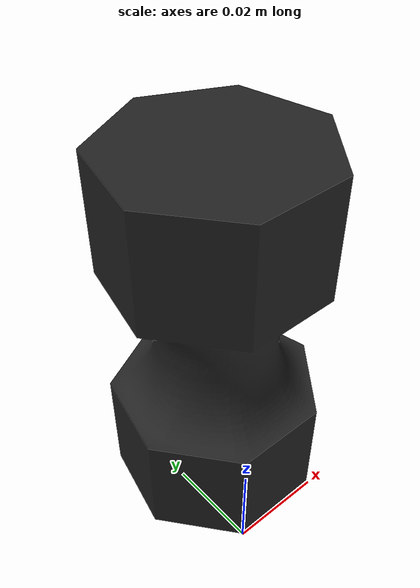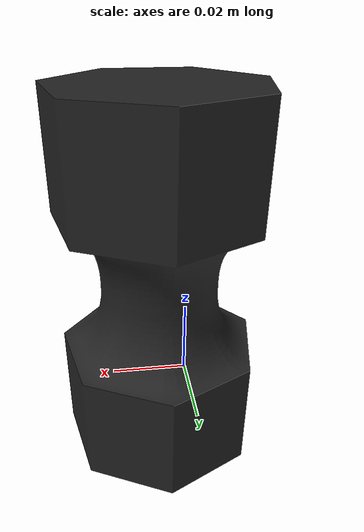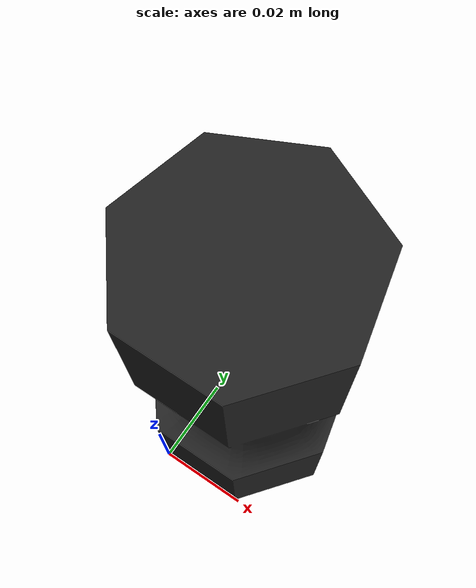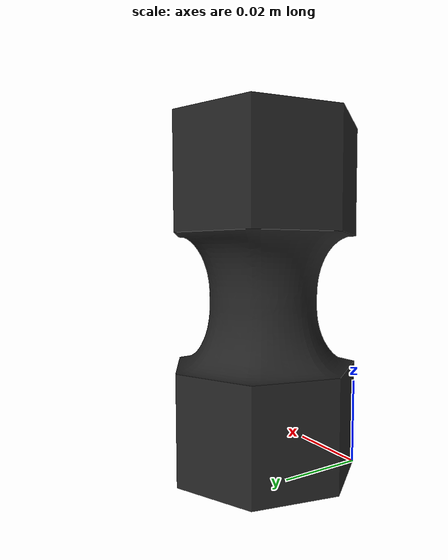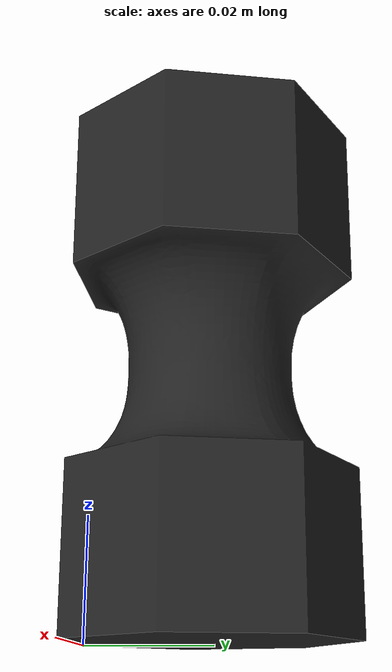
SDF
<?xml version="1.0"?>
<sdf version="1.6">
  <model name="object">
      <static>false</static>
      <link name="body">
        <pose>0 0 0 0 0 0</pose>

        <inertial>
          <mass>0.05</mass>
          <pose>0.01 0.021 0.04 0 0 0</pose>
          <inertia>
            <ixx>0.0003</ixx>
            <iyy>0.0002</iyy>
            <izz>0.0002</izz>
          </inertia>
      </inertial>

        <visual name="vis">
          <geometry>
            <mesh>
         	<uri>model://object/robot_object.dae</uri>
          </mesh>
          </geometry>
        </visual>

        <collision name="col">
          <geometry>
            <mesh>
             <uri>model://object/robot_object.dae</uri>
            </mesh>
          </geometry>
        </collision>
      </link>
  </model>
</sdf>
